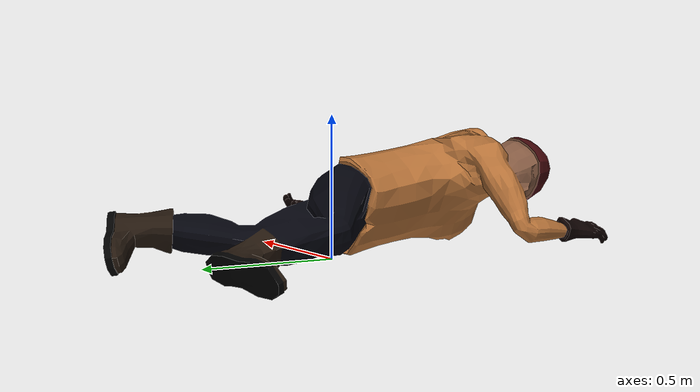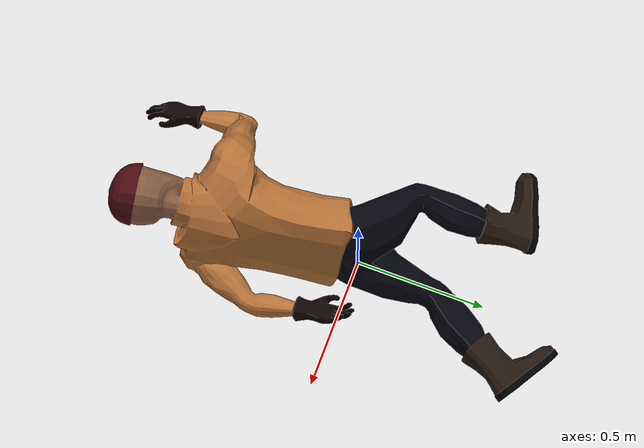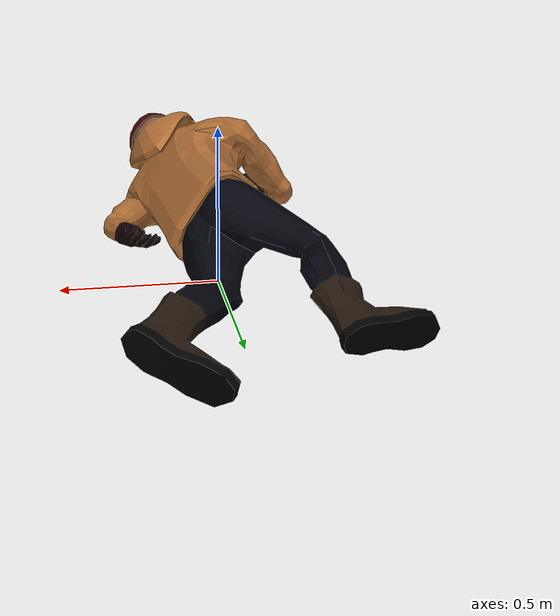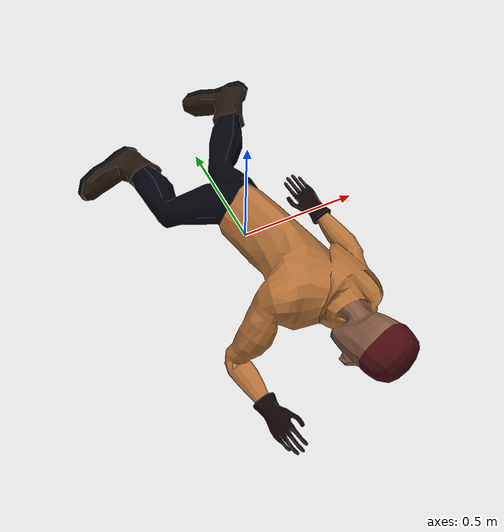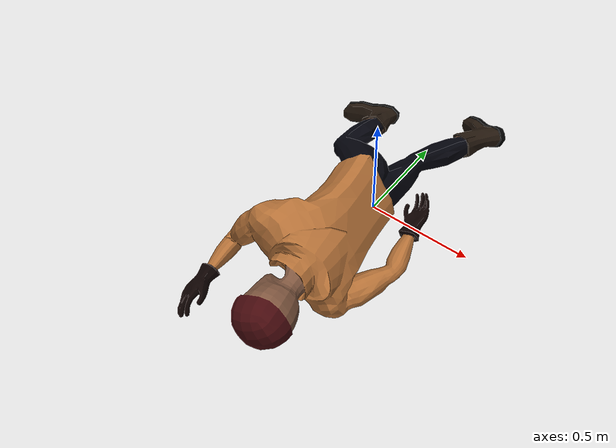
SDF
<?xml version="1.0" ?>

<sdf version="1.4">
  <model name="lost_victim">
    <static>true</static>
    <link name="lost_victim">
      <collision name="collision">
	<geometry>
            <mesh>
	      <uri>model://lost_victim/victim.dae</uri>
	    </mesh>
          </geometry>
      </collision>
      <visual name="vis">
        <cast_shadows>false</cast_shadows>

	<geometry>
            <mesh>
	      <uri>model://lost_victim/victim.dae</uri>
	    </mesh>
          </geometry>
      </visual>

    </link>
          <plugin name="scanable"
              filename="libiai_object_transmitter.so">
            <object_type>victim</object_type><!-- this is used to determine -->
            <absolute_detection>true</absolute_detection>
            <attribute key="otype" value="victim"/>
            <attribute key="manmade" value="true"/>
            <attribute key="navigation" value="inner"/>
      </plugin>
  </model>
</sdf>
